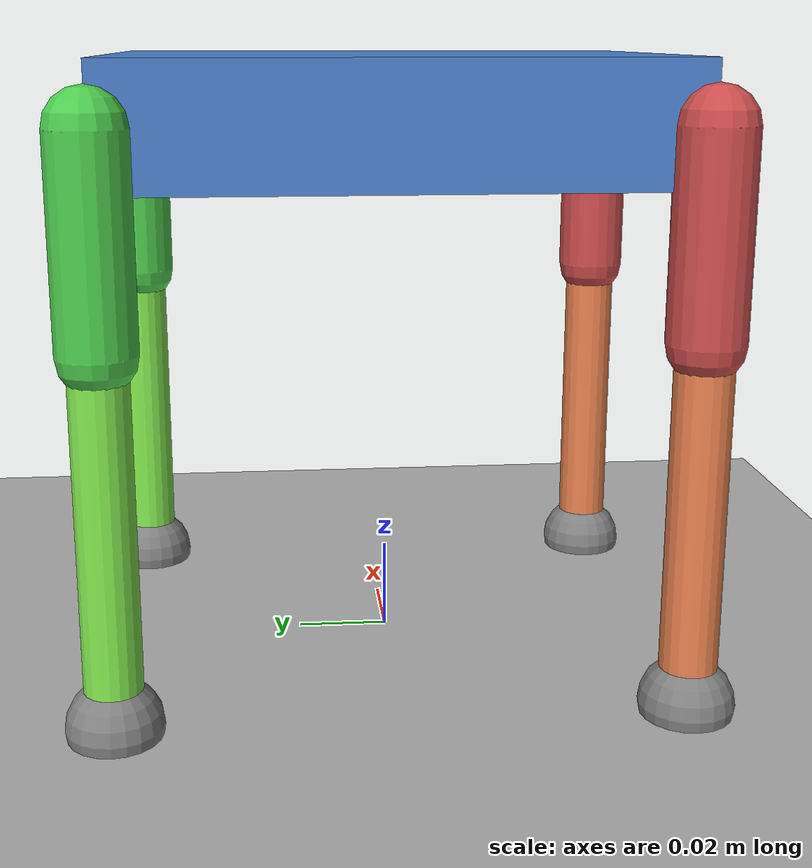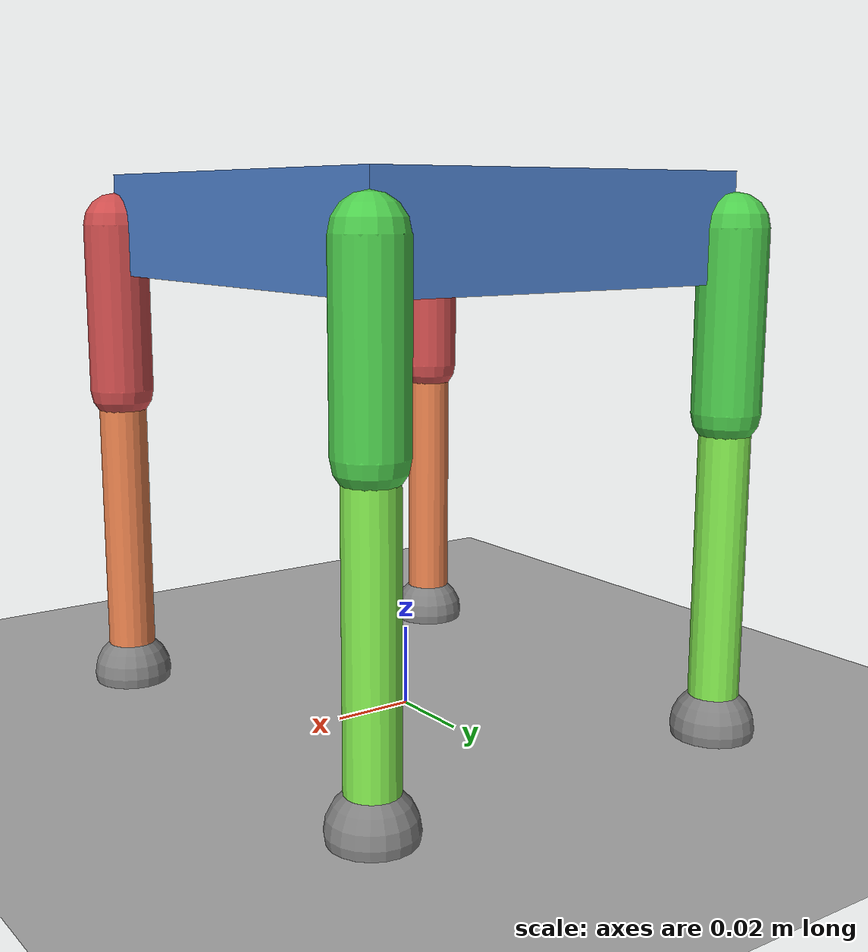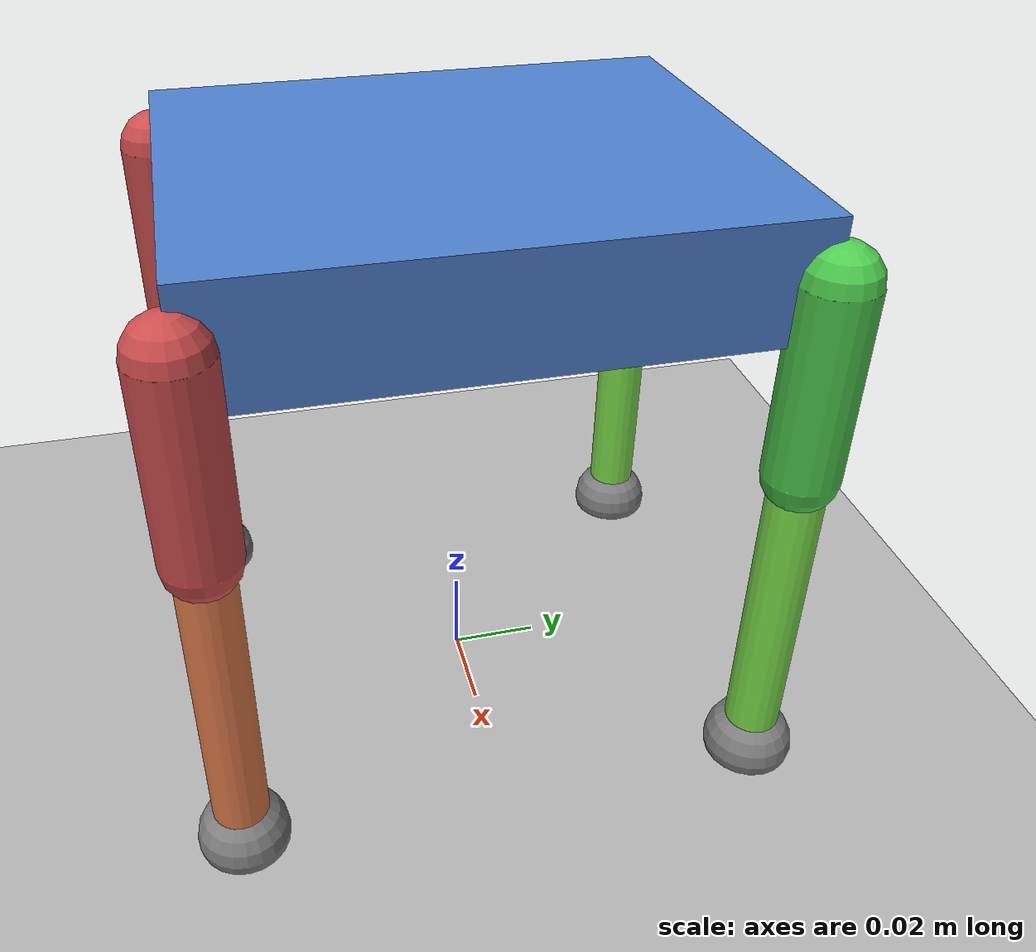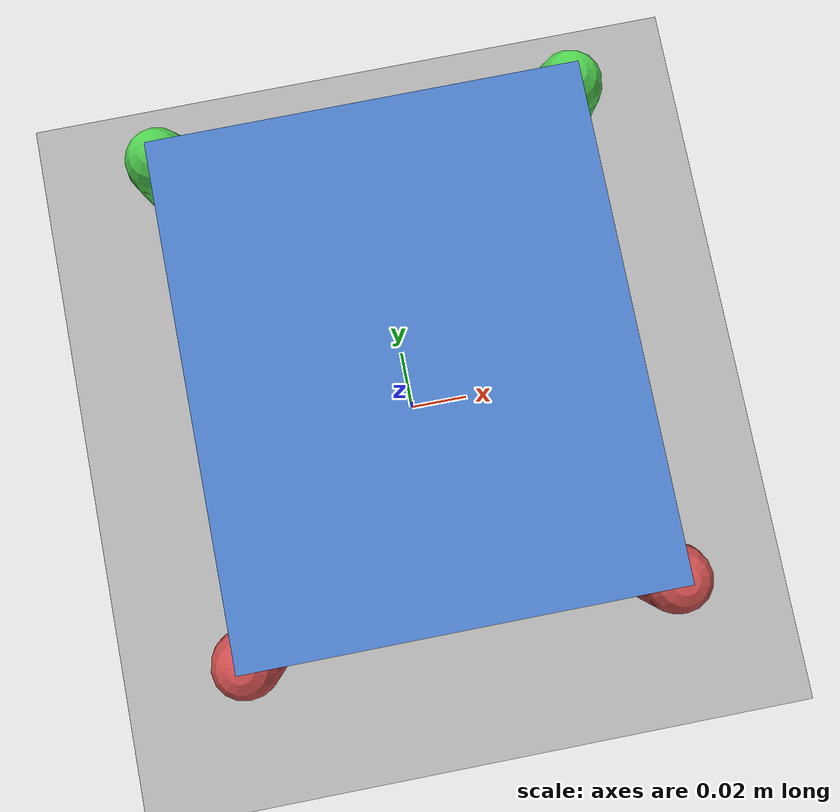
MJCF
<mujoco model="pidog">
  <compiler angle="degree" autolimits="true"/>

  <option gravity="0 0 -9.81" timestep="0.002">
    <flag contact="enable"/>
  </option>

  <default>
    <joint damping="0.2" armature="0.01"/>
    <geom friction="0.8 0.005 0.001" condim="3" conaffinity="1" contype="1"/>
    <position kp="200" forcerange="-10 10"/>
  </default>

  <asset>
    <texture type="2d" name="grid" builtin="checker" width="512" height="512"
             rgb1="0.8 0.8 0.8" rgb2="0.6 0.6 0.6"/>
    <material name="grid_mat" texture="grid" texrepeat="8 8"/>
  </asset>

  <worldbody>
    <light diffuse="0.8 0.8 0.8" pos="0 0 2" dir="0 0 -1"/>
    <light diffuse="0.3 0.3 0.3" pos="1 1 2" dir="-0.5 -0.5 -1"/>

    <!-- Ground plane -->
    <geom type="plane" size="2 2 0.01" material="grid_mat" conaffinity="1" contype="1"/>

    <!-- ============ TORSO ============ -->
    <!-- Body: 117mm long x 98mm wide x 25mm tall, ~300g estimated -->
    <body name="torso" pos="0 0 0.12">
      <freejoint name="root"/>
      <geom name="torso_geom" type="box" size="0.049 0.0585 0.0125"
            rgba="0.3 0.5 0.8 1" mass="0.3"/>

      <!-- IMU sensor site (center of body) -->
      <site name="imu" pos="0 0 0" size="0.005"/>

      <!-- ============ LEFT FRONT LEG ============ -->
      <!-- Hip at (-49mm, -58.5mm, 0) relative to body center -->
      <body name="lf_hip" pos="-0.049 -0.0585 0">
        <joint name="lf_hip_j" type="hinge" axis="0 1 0" range="-90 90"/>
        <geom name="lf_upper" type="capsule" fromto="0 0 0 0 0 -0.042"
              size="0.008" rgba="0.8 0.3 0.3 1" mass="0.02"/>

        <body name="lf_knee" pos="0 0 -0.042">
          <joint name="lf_knee_j" type="hinge" axis="0 1 0" range="-90 90"/>
          <geom name="lf_lower" type="capsule" fromto="0 0 0 0 0 -0.076"
                size="0.006" rgba="0.9 0.5 0.3 1" mass="0.015"/>
          <!-- Foot contact point -->
          <site name="lf_foot" pos="0 0 -0.076" size="0.01"/>
        </body>
      </body>

      <!-- ============ RIGHT FRONT LEG ============ -->
      <!-- Hip at (+49mm, -58.5mm, 0) — axis flipped for mirrored sign convention -->
      <body name="rf_hip" pos="0.049 -0.0585 0">
        <joint name="rf_hip_j" type="hinge" axis="0 -1 0" range="-90 90"/>
        <geom name="rf_upper" type="capsule" fromto="0 0 0 0 0 -0.042"
              size="0.008" rgba="0.8 0.3 0.3 1" mass="0.02"/>

        <body name="rf_knee" pos="0 0 -0.042">
          <joint name="rf_knee_j" type="hinge" axis="0 -1 0" range="-90 90"/>
          <geom name="rf_lower" type="capsule" fromto="0 0 0 0 0 -0.076"
                size="0.006" rgba="0.9 0.5 0.3 1" mass="0.015"/>
          <site name="rf_foot" pos="0 0 -0.076" size="0.01"/>
        </body>
      </body>

      <!-- ============ LEFT HIND LEG ============ -->
      <!-- Hip at (-49mm, +58.5mm, 0) -->
      <body name="lh_hip" pos="-0.049 0.0585 0">
        <joint name="lh_hip_j" type="hinge" axis="0 1 0" range="-90 90"/>
        <geom name="lh_upper" type="capsule" fromto="0 0 0 0 0 -0.042"
              size="0.008" rgba="0.3 0.8 0.3 1" mass="0.02"/>

        <body name="lh_knee" pos="0 0 -0.042">
          <joint name="lh_knee_j" type="hinge" axis="0 1 0" range="-90 90"/>
          <geom name="lh_lower" type="capsule" fromto="0 0 0 0 0 -0.076"
                size="0.006" rgba="0.5 0.9 0.3 1" mass="0.015"/>
          <site name="lh_foot" pos="0 0 -0.076" size="0.01"/>
        </body>
      </body>

      <!-- ============ RIGHT HIND LEG ============ -->
      <!-- Hip at (+49mm, +58.5mm, 0) — axis flipped for mirrored sign convention -->
      <body name="rh_hip" pos="0.049 0.0585 0">
        <joint name="rh_hip_j" type="hinge" axis="0 -1 0" range="-90 90"/>
        <geom name="rh_upper" type="capsule" fromto="0 0 0 0 0 -0.042"
              size="0.008" rgba="0.3 0.8 0.3 1" mass="0.02"/>

        <body name="rh_knee" pos="0 0 -0.042">
          <joint name="rh_knee_j" type="hinge" axis="0 -1 0" range="-90 90"/>
          <geom name="rh_lower" type="capsule" fromto="0 0 0 0 0 -0.076"
                size="0.006" rgba="0.5 0.9 0.3 1" mass="0.015"/>
          <site name="rh_foot" pos="0 0 -0.076" size="0.01"/>
        </body>
      </body>

    </body>
  </worldbody>

  <!-- ============ ACTUATORS ============ -->
  <!-- Position servos: kp controls stiffness, forcerange limits torque -->
  <actuator>
    <!-- Leg actuators: mapped to PiDog indices -->
    <!-- Index 0: LF upper (hip) -->
    <position name="lf_hip_a"  joint="lf_hip_j"  ctrlrange="-80 80"  kp="200"/>
    <!-- Index 1: LF lower (knee) -->
    <position name="lf_knee_a" joint="lf_knee_j" ctrlrange="-80 80"  kp="200"/>
    <!-- Index 2: RF upper (hip) -->
    <position name="rf_hip_a"  joint="rf_hip_j"  ctrlrange="-80 80"  kp="200"/>
    <!-- Index 3: RF lower (knee) -->
    <position name="rf_knee_a" joint="rf_knee_j" ctrlrange="-80 80"  kp="200"/>
    <!-- Index 4: LH upper (hip) -->
    <position name="lh_hip_a"  joint="lh_hip_j"  ctrlrange="-80 80"  kp="200"/>
    <!-- Index 5: LH lower (knee) -->
    <position name="lh_knee_a" joint="lh_knee_j" ctrlrange="-80 80"  kp="200"/>
    <!-- Index 6: RH upper (hip) -->
    <position name="rh_hip_a"  joint="rh_hip_j"  ctrlrange="-80 80"  kp="200"/>
    <!-- Index 7: RH lower (knee) -->
    <position name="rh_knee_a" joint="rh_knee_j" ctrlrange="-80 80"  kp="200"/>
  </actuator>

  <!-- ============ SENSORS ============ -->
  <sensor>
    <accelerometer name="imu_acc" site="imu"/>
    <gyro name="imu_gyro" site="imu"/>
    <framequat name="torso_quat" objtype="body" objname="torso"/>
    <framelinvel name="torso_vel" objtype="body" objname="torso"/>
  </sensor>
</mujoco>
